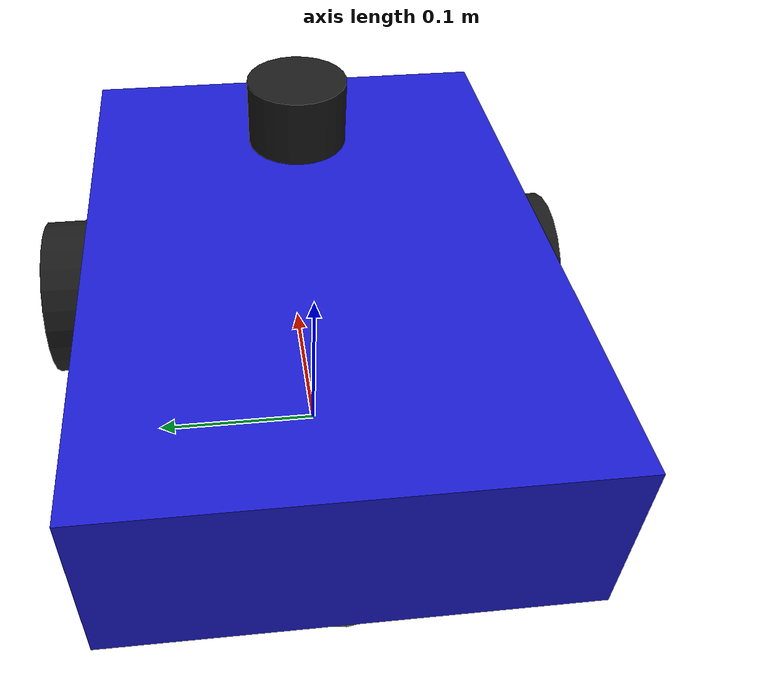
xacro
<?xml version="1.0"?>
<robot name="rl_robot" xmlns:xacro="http://www.ros.org/wiki/xacro">

  <xacro:property name="wheel_radius" value="0.05"/>
  <xacro:property name="wheel_width"  value="0.03"/>
  <xacro:property name="wheel_sep"    value="0.30"/>
  <xacro:property name="base_length" value="0.35"/>
  <xacro:property name="base_width"  value="0.25"/>
  <xacro:property name="base_height" value="0.10"/>
  <xacro:property name="base_mass"   value="5.0"/>

  <!-- ==================== BASE LINK ==================== -->
  <link name="base_link">
    <visual>
      <origin xyz="0 0 ${wheel_radius + base_height/2}"/>
      <geometry><box size="${base_length} ${base_width} ${base_height}"/></geometry>
      <material name="blue">
        <color rgba="0.1 0.1 0.8 1"/>
      </material>
    </visual>
    <collision>
      <origin xyz="0 0 ${wheel_radius + base_height/2}"/>
      <geometry><box size="${base_length} ${base_width} ${base_height}"/></geometry>
    </collision>
    <inertial>
      <origin xyz="0 0 ${wheel_radius + base_height/2}"/>
      <mass value="${base_mass}"/>
      <inertia ixx="0.05" ixy="0" ixz="0" iyy="0.06" iyz="0" izz="0.08"/>
    </inertial>
  </link>

  <!-- ==================== WHEEL MACRO ==================== -->
  <xacro:macro name="wheel" params="prefix reflect">
    <link name="${prefix}_wheel_link">
      <visual>
        <geometry><cylinder radius="${wheel_radius}" length="${wheel_width}"/></geometry>
        <origin rpy="${pi/2} 0 0"/>
        <material name="black">
          <color rgba="0.1 0.1 0.1 1"/>
        </material>
      </visual>
      <collision>
        <geometry><cylinder radius="${wheel_radius}" length="${wheel_width}"/></geometry>
        <origin rpy="${pi/2} 0 0"/>
      </collision>
      <inertial>
        <mass value="0.5"/>
        <inertia ixx="0.001" ixy="0" ixz="0" iyy="0.001" iyz="0" izz="0.001"/>
      </inertial>
    </link>

    <joint name="${prefix}_wheel_joint" type="continuous">
      <parent link="base_link"/>
      <child link="${prefix}_wheel_link"/>
      <origin xyz="0.08 ${reflect * wheel_sep/2} ${wheel_radius}" rpy="0 0 0"/>
      <axis xyz="0 1 0"/>
      <limit effort="100.0" velocity="20.0"/>
      <dynamics damping="0.01" friction="0.01"/>
    </joint>

    <gazebo reference="${prefix}_wheel_link">
      <mu1>1.0</mu1>
      <mu2>1.0</mu2>
      <kp>1000000.0</kp>
      <kd>100.0</kd>
    </gazebo>
  </xacro:macro>

  <xacro:wheel prefix="left"  reflect="1"/>
  <xacro:wheel prefix="right" reflect="-1"/>

  <!-- ==================== CASTER ==================== -->
  <link name="caster_link">
    <visual>
      <geometry><sphere radius="0.025"/></geometry>
      <material name="grey">
        <color rgba="0.5 0.5 0.5 1"/>
      </material>
    </visual>
    <collision>
      <geometry><sphere radius="0.025"/></geometry>
    </collision>
    <inertial>
      <mass value="0.1"/>
      <inertia ixx="1e-4" ixy="0" ixz="0" iyy="1e-4" iyz="0" izz="1e-4"/>
    </inertial>
  </link>
  <joint name="caster_joint" type="fixed">
    <parent link="base_link"/>
    <child link="caster_link"/>
    <origin xyz="${-base_length/2 + 0.04} 0 0.025"/>
  </joint>
  <gazebo reference="caster_link">
    <mu1>0.0</mu1>
    <mu2>0.0</mu2>
  </gazebo>

  <!-- ==================== DIFF DRIVE PLUGIN ==================== -->
  <!-- Uses the native Gazebo diff_drive plugin — no ros2_control needed -->
  <gazebo>
    <plugin name="diff_drive" filename="libgazebo_ros_diff_drive.so">
      <ros>
        <namespace>/</namespace>
      </ros>

      <!-- Wheel joints -->
      <left_joint>left_wheel_joint</left_joint>
      <right_joint>right_wheel_joint</right_joint>

      <!-- Kinematics -->
      <wheel_separation>${wheel_sep}</wheel_separation>
      <wheel_diameter>${wheel_radius * 2}</wheel_diameter>

      <!-- Limits -->
      <max_wheel_torque>20.0</max_wheel_torque>
      <max_wheel_acceleration>1.0</max_wheel_acceleration>

      <!-- Output -->
      <publish_odom>true</publish_odom>
      <publish_odom_tf>true</publish_odom_tf>
      <publish_wheel_tf>true</publish_wheel_tf>

      <odometry_frame>odom</odometry_frame>
      <robot_base_frame>base_link</robot_base_frame>

      <!-- Topic remapping -->
      <command_topic>cmd_vel</command_topic>
      <odometry_topic>odom</odometry_topic>
    </plugin>
  </gazebo>

  <!-- ==================== JOINT STATE PUBLISHER ==================== -->
  <gazebo>
    <plugin name="joint_state_publisher" filename="libgazebo_ros_joint_state_publisher.so">
      <ros>
        <namespace>/</namespace>
      </ros>
      <joint_name>left_wheel_joint</joint_name>
      <joint_name>right_wheel_joint</joint_name>
      <update_rate>50</update_rate>
    </plugin>
  </gazebo>

  <!-- ==================== SENSORS ==================== -->
  <xacro:include filename="$(find rl_robot_description)/urdf/sensors.xacro"/>
  <xacro:lidar parent="base_link"/>

</robot>

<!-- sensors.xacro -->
<robot xmlns:xacro="http://www.ros.org/wiki/xacro">
  <xacro:macro name="lidar" params="parent">
    <link name="lidar_link">
        <visual>
        <geometry><cylinder radius="0.03" length="0.04"/></geometry>
        <material name="black">
          <color rgba="0.1 0.1 0.1 1"/>
        </material>
      </visual>
      <collision>
        <geometry><cylinder radius="0.03" length="0.04"/></geometry>
      </collision>
      <inertial>
        <mass value="0.1"/>
        <inertia ixx="1e-4" ixy="0" ixz="0" iyy="1e-4" iyz="0" izz="1e-4"/>
      </inertial>
    </link>
    <joint name="lidar_joint" type="fixed">
      <parent link="${parent}"/>
      <child link="lidar_link"/>
      <origin xyz="0.1 0 0.17"/>
    </joint>

    <gazebo reference="lidar_link">
      <sensor name="lidar" type="ray">
        <always_on>true</always_on>
        <visualize>true</visualize>
        <update_rate>10</update_rate>
        <ray>
          <scan>
            <horizontal>
              <samples>20</samples>
              <resolution>1.000000</resolution>
              <min_angle>-1.5708</min_angle>
              <max_angle>1.5708</max_angle>
            </horizontal>
          </scan>
          <range>
            <min>0.1</min>
            <max>10.0</max>
            <resolution>0.015000</resolution>
          </range>
          <noise>
            <type>gaussian</type>
            <mean>0.0</mean>
            <stddev>0.01</stddev>
          </noise>
        </ray>
        <plugin name="scan" filename="libgazebo_ros_ray_sensor.so">
          <ros>
            <remapping>~/out:=scan</remapping>
          </ros>
          <output_type>sensor_msgs/LaserScan</output_type>
          <frame_name>lidar_link</frame_name>
        </plugin>
      </sensor>
    </gazebo>
  </xacro:macro>
</robot>
